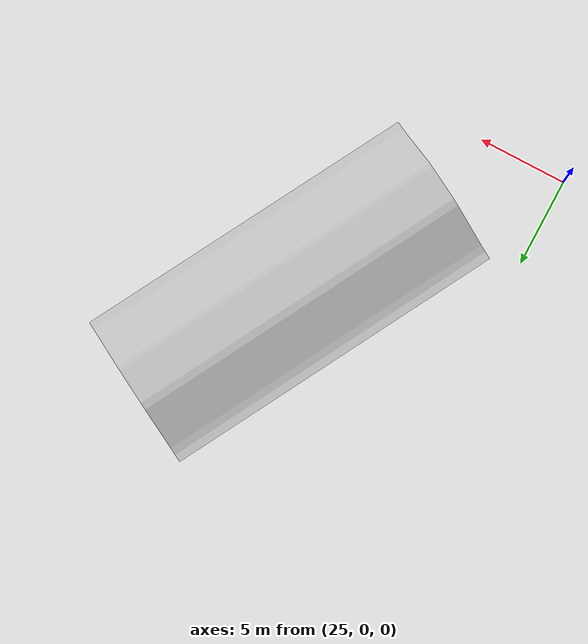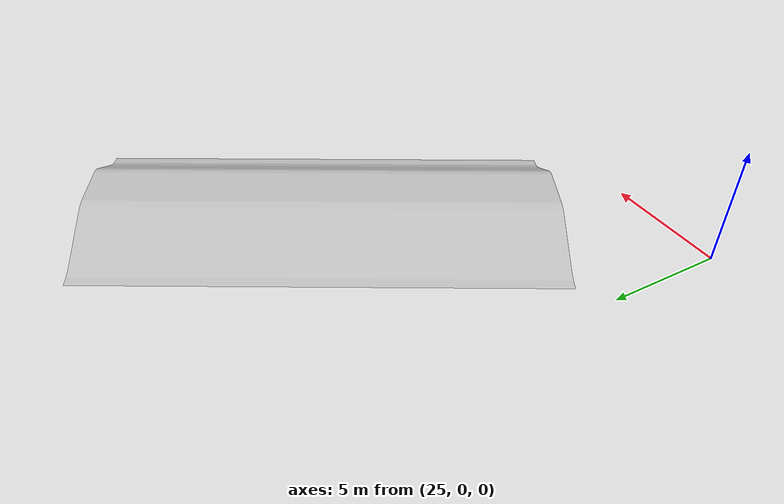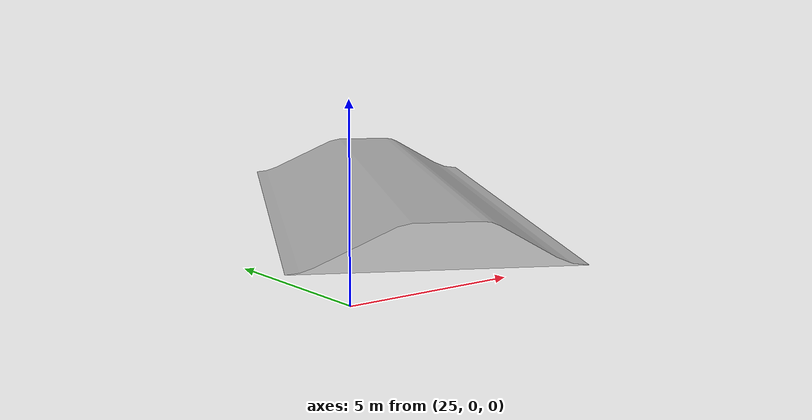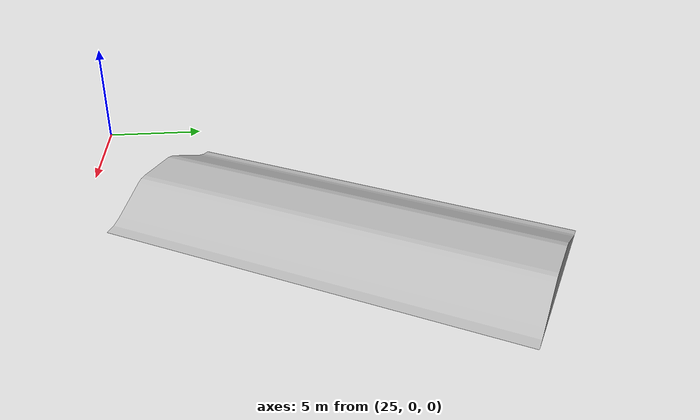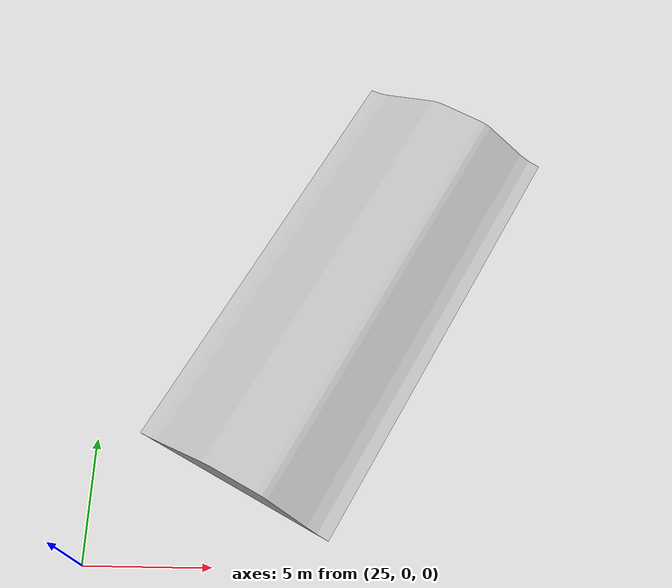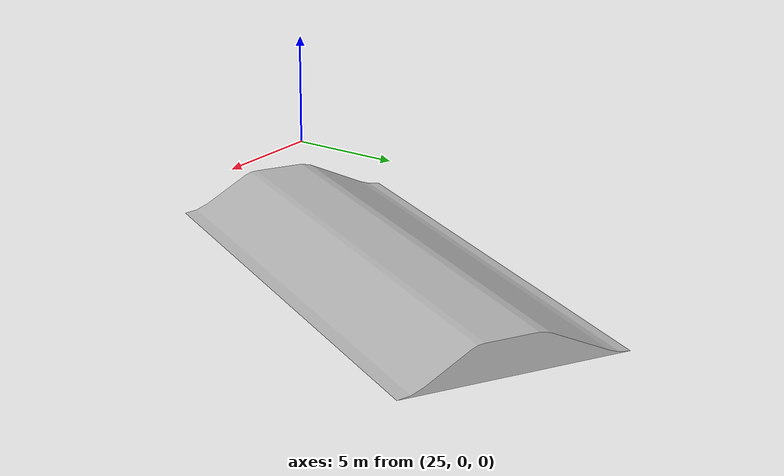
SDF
<?xml version="1.0" ?>
<sdf version="1.5">
  <model name="roughterrain_1000x1000">
    <static>true</static>
    <link name="link">
      <pose frame="">30 15 -0.5 -1.5708 0 -0.5</pose>
      <collision name="collision">
        <geometry>
          <mesh>
            <uri>model://slope/meshes/slope.STL</uri>
            <scale>0.2 0.2 0.2</scale>
          </mesh>
        </geometry>
        <surface>
          <friction>
            <ode>
              <mu>300</mu>
              <mu2>150</mu2>
            </ode>
          </friction>
      </surface>
      </collision>
      <visual name="visual">
          <geometry>
             <mesh>
                <uri>model://slope/meshes/slope.STL</uri>
                <scale>0.2 0.2 0.2</scale>
             </mesh>
          </geometry>
      </visual>
    </link>

  </model>
</sdf>
